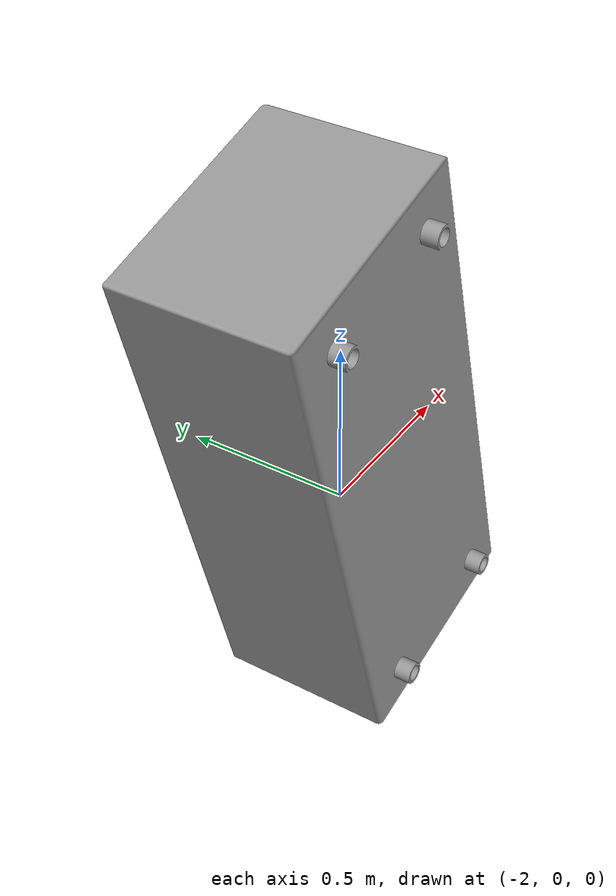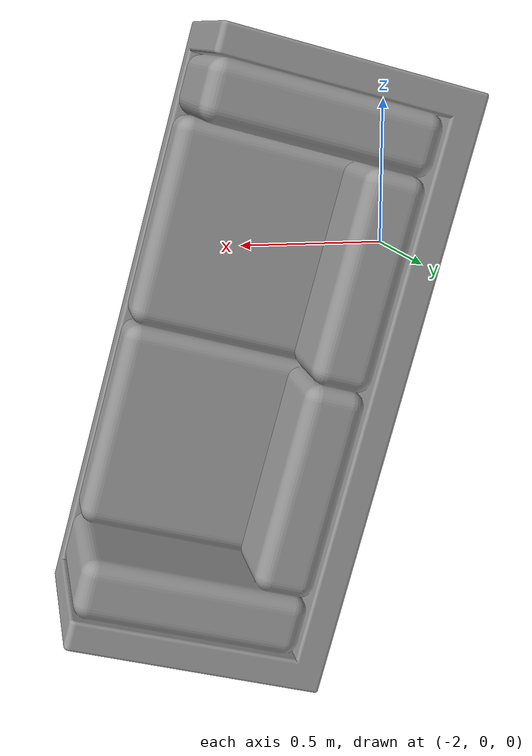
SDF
<?xml version='1.0'?>
<sdf version='1.4'>
  <model name="sofa">
    <pose>0 0 0  0 0 0</pose>
    <static>true</static>
    <link name="body">
      <visual name="visual">
        <geometry>
          <mesh>
            <uri>model://sofa/The_Couch.dae</uri>
            <scale>2.5 2.5 2.5</scale>
          </mesh>
        </geometry>
      </visual>
    </link>
  </model>
</sdf>
